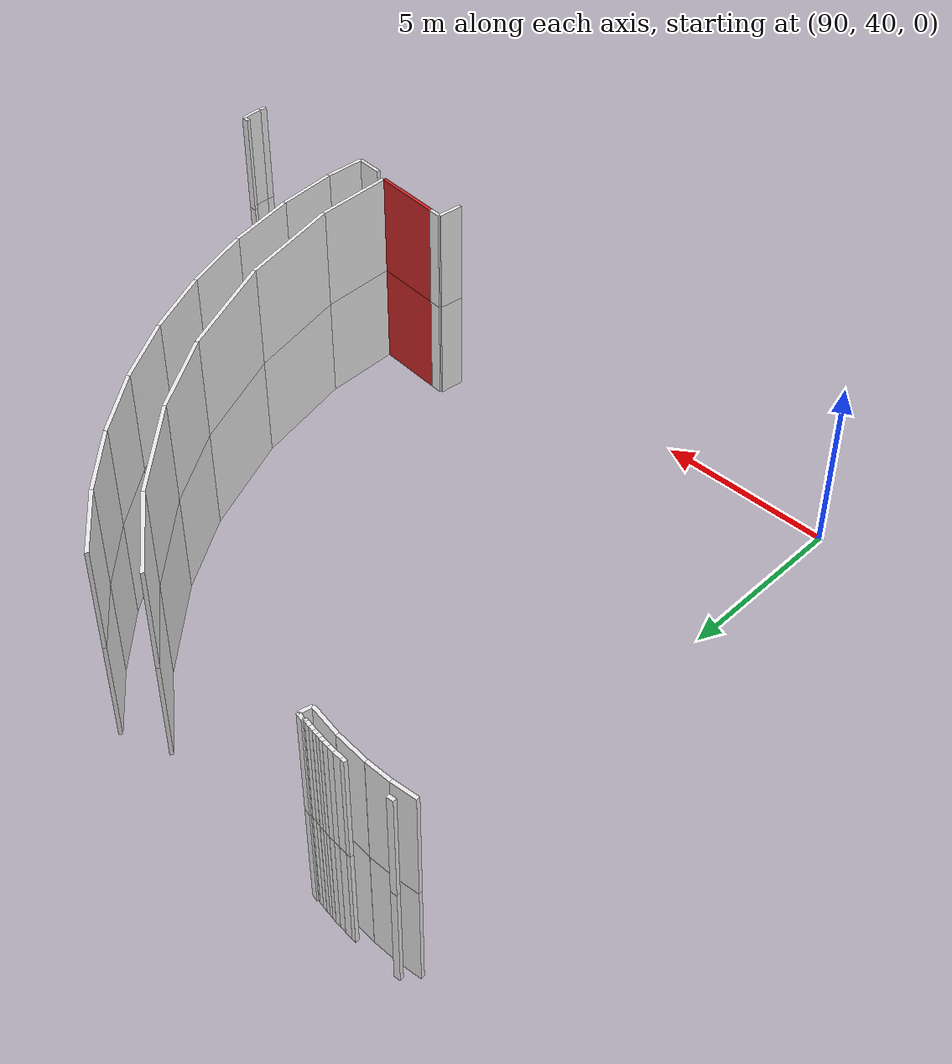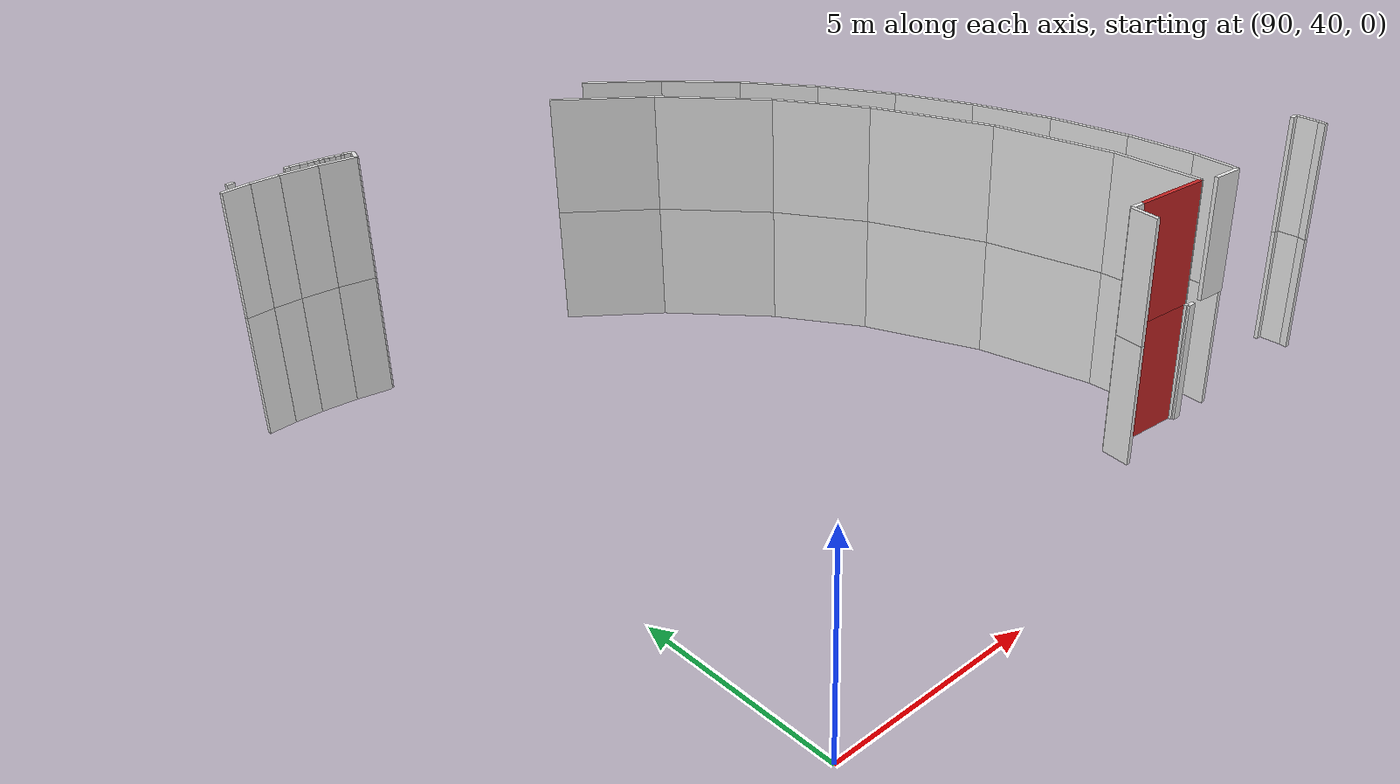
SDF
<sdf version="1.6">
 <world name="default">
  <model name="wall_102.6_42.5_1.5">
   <static>true</static>
   <pose>102.60500000001048 42.48999999999069 1.5 0 0 -0.08271241528552369</pose>
   <link name="link">
    <visual name="visual">
     <geometry><box><size>1.9366207682124321 0.1 3</size></box></geometry>
     <material>
      <script><uri>file://media/materials/scripts/gazebo.material</uri><name>Gazebo/Red</name></script>
     </material>
    </visual>
    <collision name="collision"><geometry><box><size>1.9366207682124321 0.1 3</size></box></geometry></collision>
   </link>
  </model>
  <model name="wall_102.6_42.5_4.5">
   <static>true</static>
   <pose>102.60500000001048 42.48999999999069 4.5 0 0 -0.08271241528552369</pose>
   <link name="link">
    <visual name="visual">
     <geometry><box><size>1.9366207682124321 0.1 3</size></box></geometry>
     <material>
      <script><uri>file://media/materials/scripts/gazebo.material</uri><name>Gazebo/Red</name></script>
     </material>
    </visual>
    <collision name="collision"><geometry><box><size>1.9366207682124321 0.1 3</size></box></geometry></collision>
   </link>
  </model>
  <model name="wall_101.6_42.3_1.5">
   <static>true</static>
   <pose>101.5800000000163 42.29000000003725 1.5 0 0 1.4601391053370611</pose>
   <link name="link">
    <visual name="visual">
     <geometry><box><size>0.18110770246860486 0.1 3</size></box></geometry>
     <material>
      <script><uri>file://media/materials/scripts/gazebo.material</uri><name>Gazebo/White</name></script>
     </material>
    </visual>
    <collision name="collision"><geometry><box><size>0.18110770246860486 0.1 3</size></box></geometry></collision>
   </link>
  </model>
  <model name="wall_101.6_42.4_1.5">
   <static>true</static>
   <pose>101.61000000001513 42.375 1.5 0 0 -0.24497865799089408</pose>
   <link name="link">
    <visual name="visual">
     <geometry><box><size>0.04123105618163657 0.1 3</size></box></geometry>
     <material>
      <script><uri>file://media/materials/scripts/gazebo.material</uri><name>Gazebo/White</name></script>
     </material>
    </visual>
    <collision name="collision"><geometry><box><size>0.04123105618163657 0.1 3</size></box></geometry></collision>
   </link>
  </model>
  <model name="wall_101.6_42.5_1.5">
   <static>true</static>
   <pose>101.63500000000931 42.46999999997206 1.5 0 0 1.520837930956829</pose>
   <link name="link">
    <visual name="visual">
     <geometry><box><size>0.20024984366642476 0.1 3</size></box></geometry>
     <material>
      <script><uri>file://media/materials/scripts/gazebo.material</uri><name>Gazebo/White</name></script>
     </material>
    </visual>
    <collision name="collision"><geometry><box><size>0.20024984366642476 0.1 3</size></box></geometry></collision>
   </link>
  </model>
  <model name="wall_103.6_42.4_1.5">
   <static>true</static>
   <pose>103.56500000000233 42.35000000009313 1.5 0 0 -1.6539375586833378</pose>
   <link name="link">
    <visual name="visual">
     <geometry><box><size>0.12041594590006904 0.1 3</size></box></geometry>
     <material>
      <script><uri>file://media/materials/scripts/gazebo.material</uri><name>Gazebo/White</name></script>
     </material>
    </visual>
    <collision name="collision"><geometry><box><size>0.12041594590006904 0.1 3</size></box></geometry></collision>
   </link>
  </model>
  <model name="wall_103.7_42.3_1.5">
   <static>true</static>
   <pose>103.66500000000815 42.28499999991618 1.5 0 0 -0.0475831044226998</pose>
   <link name="link">
    <visual name="visual">
     <geometry><box><size>0.21023796044873502 0.1 3</size></box></geometry>
     <material>
      <script><uri>file://media/materials/scripts/gazebo.material</uri><name>Gazebo/White</name></script>
     </material>
    </visual>
    <collision name="collision"><geometry><box><size>0.21023796044873502 0.1 3</size></box></geometry></collision>
   </link>
  </model>
  <model name="wall_91.1_56.7_1.5">
   <static>true</static>
   <pose>91.07500000001164 56.68000000016764 1.5 0 0 1.3258176636680326</pose>
   <link name="link">
    <visual name="visual">
     <geometry><box><size>0.04123105629457602 0.1 3</size></box></geometry>
     <material>
      <script><uri>file://media/materials/scripts/gazebo.material</uri><name>Gazebo/White</name></script>
     </material>
    </visual>
    <collision name="collision"><geometry><box><size>0.04123105629457602 0.1 3</size></box></geometry></collision>
   </link>
  </model>
  <model name="wall_91.2_56.7_1.5">
   <static>true</static>
   <pose>91.18000000002212 56.675000000046566 1.5 0 0 -0.24497866442797658</pose>
   <link name="link">
    <visual name="visual">
     <geometry><box><size>0.20615528135994066 0.1 3</size></box></geometry>
     <material>
      <script><uri>file://media/materials/scripts/gazebo.material</uri><name>Gazebo/White</name></script>
     </material>
    </visual>
    <collision name="collision"><geometry><box><size>0.20615528135994066 0.1 3</size></box></geometry></collision>
   </link>
  </model>
  <model name="wall_88.5_56.8_1.5">
   <static>true</static>
   <pose>88.47000000000116 56.83499999996275 1.5 0 0 0.05549850400992342</pose>
   <link name="link">
    <visual name="visual">
     <geometry><box><size>0.18027756375382678 0.1 3</size></box></geometry>
     <material>
      <script><uri>file://media/materials/scripts/gazebo.material</uri><name>Gazebo/White</name></script>
     </material>
    </visual>
    <collision name="collision"><geometry><box><size>0.18027756375382678 0.1 3</size></box></geometry></collision>
   </link>
  </model>
  <model name="wall_89.8_56.8_1.5">
   <static>true</static>
   <pose>89.77999999999884 56.83499999996275 1.5 0 0 -0.08314123000171016</pose>
   <link name="link">
    <visual name="visual">
     <geometry><box><size>0.12041594582272691 0.1 3</size></box></geometry>
     <material>
      <script><uri>file://media/materials/scripts/gazebo.material</uri><name>Gazebo/White</name></script>
     </material>
    </visual>
    <collision name="collision"><geometry><box><size>0.12041594582272691 0.1 3</size></box></geometry></collision>
   </link>
  </model>
  <model name="wall_90.0_56.8_1.5">
   <static>true</static>
   <pose>89.95000000001164 56.82000000006519 1.5 0 0 -0.0906598872961675</pose>
   <link name="link">
    <visual name="visual">
     <geometry><box><size>0.22090722031760665 0.1 3</size></box></geometry>
     <material>
      <script><uri>file://media/materials/scripts/gazebo.material</uri><name>Gazebo/White</name></script>
     </material>
    </visual>
    <collision name="collision"><geometry><box><size>0.22090722031760665 0.1 3</size></box></geometry></collision>
   </link>
  </model>
  <model name="wall_90.1_56.8_1.5">
   <static>true</static>
   <pose>90.14999999999418 56.800000000046566 1.5 0 0 -0.11065722128037307</pose>
   <link name="link">
    <visual name="visual">
     <geometry><box><size>0.1811077027578631 0.1 3</size></box></geometry>
     <material>
      <script><uri>file://media/materials/scripts/gazebo.material</uri><name>Gazebo/White</name></script>
     </material>
    </visual>
    <collision name="collision"><geometry><box><size>0.1811077027578631 0.1 3</size></box></geometry></collision>
   </link>
  </model>
  <model name="wall_90.3_56.8_1.5">
   <static>true</static>
   <pose>90.31500000000233 56.78499999991618 1.5 0 0 -0.06656816537267114</pose>
   <link name="link">
    <visual name="visual">
     <geometry><box><size>0.15033296382306774 0.1 3</size></box></geometry>
     <material>
      <script><uri>file://media/materials/scripts/gazebo.material</uri><name>Gazebo/White</name></script>
     </material>
    </visual>
    <collision name="collision"><geometry><box><size>0.15033296382306774 0.1 3</size></box></geometry></collision>
   </link>
  </model>
  <model name="wall_90.5_56.8_1.5">
   <static>true</static>
   <pose>90.45000000001164 56.769999999785796 1.5 0 0 -0.16514867757194485</pose>
   <link name="link">
    <visual name="visual">
     <geometry><box><size>0.1216552506044333 0.1 3</size></box></geometry>
     <material>
      <script><uri>file://media/materials/scripts/gazebo.material</uri><name>Gazebo/White</name></script>
     </material>
    </visual>
    <collision name="collision"><geometry><box><size>0.1216552506044333 0.1 3</size></box></geometry></collision>
   </link>
  </model>
  <model name="wall_90.6_56.8_1.5">
   <static>true</static>
   <pose>90.56500000000233 56.75 1.5 0 0 -0.17985349588092345</pose>
   <link name="link">
    <visual name="visual">
     <geometry><box><size>0.11180339878127696 0.1 3</size></box></geometry>
     <material>
      <script><uri>file://media/materials/scripts/gazebo.material</uri><name>Gazebo/White</name></script>
     </material>
    </visual>
    <collision name="collision"><geometry><box><size>0.11180339878127696 0.1 3</size></box></geometry></collision>
   </link>
  </model>
  <model name="wall_90.7_56.7_1.5">
   <static>true</static>
   <pose>90.67499999998836 56.735000000102445 1.5 0 0 -0.0906598893954602</pose>
   <link name="link">
    <visual name="visual">
     <geometry><box><size>0.11045361017988281 0.1 3</size></box></geometry>
     <material>
      <script><uri>file://media/materials/scripts/gazebo.material</uri><name>Gazebo/White</name></script>
     </material>
    </visual>
    <collision name="collision"><geometry><box><size>0.11045361017988281 0.1 3</size></box></geometry></collision>
   </link>
  </model>
  <model name="wall_90.8_56.7_1.5">
   <static>true</static>
   <pose>90.79999999998836 56.71500000008382 1.5 0 0 -0.2110933318030475</pose>
   <link name="link">
    <visual name="visual">
     <geometry><box><size>0.14317821060349267 0.1 3</size></box></geometry>
     <material>
      <script><uri>file://media/materials/scripts/gazebo.material</uri><name>Gazebo/White</name></script>
     </material>
    </visual>
    <collision name="collision"><geometry><box><size>0.14317821060349267 0.1 3</size></box></geometry></collision>
   </link>
  </model>
  <model name="wall_90.9_56.7_1.5">
   <static>true</static>
   <pose>90.93499999999767 56.69000000017695 1.5 0 0 -0.15264932852984936</pose>
   <link name="link">
    <visual name="visual">
     <geometry><box><size>0.13152946438709381 0.1 3</size></box></geometry>
     <material>
      <script><uri>file://media/materials/scripts/gazebo.material</uri><name>Gazebo/White</name></script>
     </material>
    </visual>
    <collision name="collision"><geometry><box><size>0.13152946438709381 0.1 3</size></box></geometry></collision>
   </link>
  </model>
  <model name="wall_91.0_56.7_1.5">
   <static>true</static>
   <pose>91.03500000000349 56.670000000158325 1.5 0 0 -0.2782996592247629</pose>
   <link name="link">
    <visual name="visual">
     <geometry><box><size>0.07280109890463843 0.1 3</size></box></geometry>
     <material>
      <script><uri>file://media/materials/scripts/gazebo.material</uri><name>Gazebo/White</name></script>
     </material>
    </visual>
    <collision name="collision"><geometry><box><size>0.07280109890463843 0.1 3</size></box></geometry></collision>
   </link>
  </model>
  <model name="wall_88.4_56.5_1.5">
   <static>true</static>
   <pose>88.43499999999767 56.52000000001863 1.5 0 0 0.0893139923809162</pose>
   <link name="link">
    <visual name="visual">
     <geometry><box><size>0.6726812023588774 0.1 3</size></box></geometry>
     <material>
      <script><uri>file://media/materials/scripts/gazebo.material</uri><name>Gazebo/White</name></script>
     </material>
    </visual>
    <collision name="collision"><geometry><box><size>0.6726812023588774 0.1 3</size></box></geometry></collision>
   </link>
  </model>
  <model name="wall_89.1_56.5_1.5">
   <static>true</static>
   <pose>89.11000000001513 56.549999999813735 1.5 0 0 0.0</pose>
   <link name="link">
    <visual name="visual">
     <geometry><box><size>0.6799999999930151 0.1 3</size></box></geometry>
     <material>
      <script><uri>file://media/materials/scripts/gazebo.material</uri><name>Gazebo/White</name></script>
     </material>
    </visual>
    <collision name="collision"><geometry><box><size>0.6799999999930151 0.1 3</size></box></geometry></collision>
   </link>
  </model>
  <model name="wall_89.9_56.5_1.5">
   <static>true</static>
   <pose>89.89000000001397 56.514999999897555 1.5 0 0 -0.07937831436985521</pose>
   <link name="link">
    <visual name="visual">
     <geometry><box><size>0.8827797007094841 0.1 3</size></box></geometry>
     <material>
      <script><uri>file://media/materials/scripts/gazebo.material</uri><name>Gazebo/White</name></script>
     </material>
    </visual>
    <collision name="collision"><geometry><box><size>0.8827797007094841 0.1 3</size></box></geometry></collision>
   </link>
  </model>
  <model name="wall_90.8_56.4_1.5">
   <static>true</static>
   <pose>90.76500000001397 56.40500000002794 1.5 0 0 -0.17073521137222075</pose>
   <link name="link">
    <visual name="visual">
     <geometry><box><size>0.882836338153317 0.1 3</size></box></geometry>
     <material>
      <script><uri>file://media/materials/scripts/gazebo.material</uri><name>Gazebo/White</name></script>
     </material>
    </visual>
    <collision name="collision"><geometry><box><size>0.882836338153317 0.1 3</size></box></geometry></collision>
   </link>
  </model>
  <model name="wall_91.2_56.5_1.5">
   <static>true</static>
   <pose>91.24000000001979 56.48999999999069 1.5 0 0 1.3258176634968335</pose>
   <link name="link">
    <visual name="visual">
     <geometry><box><size>0.3298484498907329 0.1 3</size></box></geometry>
     <material>
      <script><uri>file://media/materials/scripts/gazebo.material</uri><name>Gazebo/White</name></script>
     </material>
    </visual>
    <collision name="collision"><geometry><box><size>0.3298484498907329 0.1 3</size></box></geometry></collision>
   </link>
  </model>
  <model name="wall_97.5_55.6_1.5">
   <static>true</static>
   <pose>97.49499999999534 55.55499999993481 1.5 0 0 -0.6802320401382534</pose>
   <link name="link">
    <visual name="visual">
     <geometry><box><size>2.559726547806053 0.1 3</size></box></geometry>
     <material>
      <script><uri>file://media/materials/scripts/gazebo.material</uri><name>Gazebo/White</name></script>
     </material>
    </visual>
    <collision name="collision"><geometry><box><size>2.559726547806053 0.1 3</size></box></geometry></collision>
   </link>
  </model>
  <model name="wall_99.5_53.7_1.5">
   <static>true</static>
   <pose>99.46499999999651 53.65500000002794 1.5 0 0 -0.8433043686299182</pose>
   <link name="link">
    <visual name="visual">
     <geometry><box><size>2.932336951954985 0.1 3</size></box></geometry>
     <material>
      <script><uri>file://media/materials/scripts/gazebo.material</uri><name>Gazebo/White</name></script>
     </material>
    </visual>
    <collision name="collision"><geometry><box><size>2.932336951954985 0.1 3</size></box></geometry></collision>
   </link>
  </model>
  <model name="wall_101.1_51.5_1.5">
   <static>true</static>
   <pose>101.09500000000116 51.5250000001397 1.5 0 0 -1.0065718003034507</pose>
   <link name="link">
    <visual name="visual">
     <geometry><box><size>2.449693858281046 0.1 3</size></box></geometry>
     <material>
      <script><uri>file://media/materials/scripts/gazebo.material</uri><name>Gazebo/White</name></script>
     </material>
    </visual>
    <collision name="collision"><geometry><box><size>2.449693858281046 0.1 3</size></box></geometry></collision>
   </link>
  </model>
  <model name="wall_102.3_49.1_1.5">
   <static>true</static>
   <pose>102.34500000000116 49.050000000046566 1.5 0 0 -1.1789674300212807</pose>
   <link name="link">
    <visual name="visual">
     <geometry><box><size>3.1161675182897373 0.1 3</size></box></geometry>
     <material>
      <script><uri>file://media/materials/scripts/gazebo.material</uri><name>Gazebo/White</name></script>
     </material>
    </visual>
    <collision name="collision"><geometry><box><size>3.1161675182897373 0.1 3</size></box></geometry></collision>
   </link>
  </model>
  <model name="wall_103.3_46.1_1.5">
   <static>true</static>
   <pose>103.25500000000466 46.125 1.5 0 0 -1.361773383969309</pose>
   <link name="link">
    <visual name="visual">
     <geometry><box><size>3.036083002563812 0.1 3</size></box></geometry>
     <material>
      <script><uri>file://media/materials/scripts/gazebo.material</uri><name>Gazebo/White</name></script>
     </material>
    </visual>
    <collision name="collision"><geometry><box><size>3.036083002563812 0.1 3</size></box></geometry></collision>
   </link>
  </model>
  <model name="wall_103.6_43.5_1.5">
   <static>true</static>
   <pose>103.58499999999185 43.5250000001397 1.5 0 0 -1.5573442234956494</pose>
   <link name="link">
    <visual name="visual">
     <geometry><box><size>2.230201784573564 0.1 3</size></box></geometry>
     <material>
      <script><uri>file://media/materials/scripts/gazebo.material</uri><name>Gazebo/White</name></script>
     </material>
    </visual>
    <collision name="collision"><geometry><box><size>2.230201784573564 0.1 3</size></box></geometry></collision>
   </link>
  </model>
  <model name="wall_101.5_42.6_1.5">
   <static>true</static>
   <pose>101.47000000000116 42.58499999996275 1.5 0 0 3.053585279307601</pose>
   <link name="link">
    <visual name="visual">
     <geometry><box><size>0.3413209633659526 0.1 3</size></box></geometry>
     <material>
      <script><uri>file://media/materials/scripts/gazebo.material</uri><name>Gazebo/White</name></script>
     </material>
    </visual>
    <collision name="collision"><geometry><box><size>0.3413209633659526 0.1 3</size></box></geometry></collision>
   </link>
  </model>
  <model name="wall_101.3_42.2_1.5">
   <static>true</static>
   <pose>101.25999999998021 42.24500000011176 1.5 0 0 -1.6829991418206562</pose>
   <link name="link">
    <visual name="visual">
     <geometry><box><size>0.7144928270806562 0.1 3</size></box></geometry>
     <material>
      <script><uri>file://media/materials/scripts/gazebo.material</uri><name>Gazebo/White</name></script>
     </material>
    </visual>
    <collision name="collision"><geometry><box><size>0.7144928270806562 0.1 3</size></box></geometry></collision>
   </link>
  </model>
  <model name="wall_108.7_42.7_1.5">
   <static>true</static>
   <pose>108.65499999999884 42.71999999997206 1.5 0 0 1.587461450424783</pose>
   <link name="link">
    <visual name="visual">
     <geometry><box><size>0.6000833276394044 0.1 3</size></box></geometry>
     <material>
      <script><uri>file://media/materials/scripts/gazebo.material</uri><name>Gazebo/White</name></script>
     </material>
    </visual>
    <collision name="collision"><geometry><box><size>0.6000833276394044 0.1 3</size></box></geometry></collision>
   </link>
  </model>
  <model name="wall_108.6_43.0_1.5">
   <static>true</static>
   <pose>108.55000000001746 43.014999999897555 1.5 0 0 -3.0916342566630535</pose>
   <link name="link">
    <visual name="visual">
     <geometry><box><size>0.20024984396872697 0.1 3</size></box></geometry>
     <material>
      <script><uri>file://media/materials/scripts/gazebo.material</uri><name>Gazebo/White</name></script>
     </material>
    </visual>
    <collision name="collision"><geometry><box><size>0.20024984396872697 0.1 3</size></box></geometry></collision>
   </link>
  </model>
  <model name="wall_104.8_42.8_1.5">
   <static>true</static>
   <pose>104.75499999997555 42.77000000001863 1.5 0 0 1.509469815630436</pose>
   <link name="link">
    <visual name="visual">
     <geometry><box><size>1.1421471005245114 0.1 3</size></box></geometry>
     <material>
      <script><uri>file://media/materials/scripts/gazebo.material</uri><name>Gazebo/White</name></script>
     </material>
    </visual>
    <collision name="collision"><geometry><box><size>1.1421471005245114 0.1 3</size></box></geometry></collision>
   </link>
  </model>
  <model name="wall_104.7_44.2_1.5">
   <static>true</static>
   <pose>104.72999999998137 44.18999999994412 1.5 0 0 1.6412676713632708</pose>
   <link name="link">
    <visual name="visual">
     <geometry><box><size>1.7042300316072891 0.1 3</size></box></geometry>
     <material>
      <script><uri>file://media/materials/scripts/gazebo.material</uri><name>Gazebo/White</name></script>
     </material>
    </visual>
    <collision name="collision"><geometry><box><size>1.7042300316072891 0.1 3</size></box></geometry></collision>
   </link>
  </model>
  <model name="wall_104.5_46.0_1.5">
   <static>true</static>
   <pose>104.48999999999069 46.015000000130385 1.5 0 0 1.7533561799018222</pose>
   <link name="link">
    <visual name="visual">
     <geometry><box><size>1.982952344539922 0.1 3</size></box></geometry>
     <material>
      <script><uri>file://media/materials/scripts/gazebo.material</uri><name>Gazebo/White</name></script>
     </material>
    </visual>
    <collision name="collision"><geometry><box><size>1.982952344539922 0.1 3</size></box></geometry></collision>
   </link>
  </model>
  <model name="wall_104.0_47.9_1.5">
   <static>true</static>
   <pose>104.01000000000931 47.94500000006519 1.5 0 0 1.8751710629953546</pose>
   <link name="link">
    <visual name="visual">
     <geometry><box><size>2.002023975571336 0.1 3</size></box></geometry>
     <material>
      <script><uri>file://media/materials/scripts/gazebo.material</uri><name>Gazebo/White</name></script>
     </material>
    </visual>
    <collision name="collision"><geometry><box><size>2.002023975571336 0.1 3</size></box></geometry></collision>
   </link>
  </model>
  <model name="wall_103.3_49.8_1.5">
   <static>true</static>
   <pose>103.30999999999767 49.81499999994412 1.5 0 0 1.9829200711588533</pose>
   <link name="link">
    <visual name="visual">
     <geometry><box><size>1.9972230722548738 0.1 3</size></box></geometry>
     <material>
      <script><uri>file://media/materials/scripts/gazebo.material</uri><name>Gazebo/White</name></script>
     </material>
    </visual>
    <collision name="collision"><geometry><box><size>1.9972230722548738 0.1 3</size></box></geometry></collision>
   </link>
  </model>
  <model name="wall_102.4_51.6_1.5">
   <static>true</static>
   <pose>102.40999999997439 51.59499999997206 1.5 0 0 2.0949082599421773</pose>
   <link name="link">
    <visual name="visual">
     <geometry><box><size>1.9982242116278024 0.1 3</size></box></geometry>
     <material>
      <script><uri>file://media/materials/scripts/gazebo.material</uri><name>Gazebo/White</name></script>
     </material>
    </visual>
    <collision name="collision"><geometry><box><size>1.9982242116278024 0.1 3</size></box></geometry></collision>
   </link>
  </model>
  <model name="wall_101.3_53.3_1.5">
   <static>true</static>
   <pose>101.31499999997322 53.26000000000931 1.5 0 0 2.210285420979203</pose>
   <link name="link">
    <visual name="visual">
     <geometry><box><size>1.9940160481559732 0.1 3</size></box></geometry>
     <material>
      <script><uri>file://media/materials/scripts/gazebo.material</uri><name>Gazebo/White</name></script>
     </material>
    </visual>
    <collision name="collision"><geometry><box><size>1.9940160481559732 0.1 3</size></box></geometry></collision>
   </link>
  </model>
  <model name="wall_100.0_54.8_1.5">
   <static>true</static>
   <pose>100.03499999997439 54.79000000003725 1.5 0 0 2.3244030848489046</pose>
   <link name="link">
    <visual name="visual">
     <geometry><box><size>2.00212387226127 0.1 3</size></box></geometry>
     <material>
      <script><uri>file://media/materials/scripts/gazebo.material</uri><name>Gazebo/White</name></script>
     </material>
    </visual>
    <collision name="collision"><geometry><box><size>2.00212387226127 0.1 3</size></box></geometry></collision>
   </link>
  </model>
  <model name="wall_98.6_56.2_1.5">
   <static>true</static>
   <pose>98.58999999999651 56.16500000003725 1.5 0 0 2.4378629690684206</pose>
   <link name="link">
    <visual name="visual">
     <geometry><box><size>1.9936148073225644 0.1 3</size></box></geometry>
     <material>
      <script><uri>file://media/materials/scripts/gazebo.material</uri><name>Gazebo/White</name></script>
     </material>
    </visual>
    <collision name="collision"><geometry><box><size>1.9936148073225644 0.1 3</size></box></geometry></collision>
   </link>
  </model>
  <model name="wall_108.6_42.3_1.5">
   <static>true</static>
   <pose>108.64499999998952 42.32000000006519 1.5 0 0 1.4219063791284725</pose>
   <link name="link">
    <visual name="visual">
     <geometry><box><size>0.20223748388077126 0.1 3</size></box></geometry>
     <material>
      <script><uri>file://media/materials/scripts/gazebo.material</uri><name>Gazebo/White</name></script>
     </material>
    </visual>
    <collision name="collision"><geometry><box><size>0.20223748388077126 0.1 3</size></box></geometry></collision>
   </link>
  </model>
  <model name="wall_91.1_56.7_4.5">
   <static>true</static>
   <pose>91.07500000001164 56.68000000016764 4.5 0 0 1.3258176636680326</pose>
   <link name="link">
    <visual name="visual">
     <geometry><box><size>0.04123105629457602 0.1 3</size></box></geometry>
     <material>
      <script><uri>file://media/materials/scripts/gazebo.material</uri><name>Gazebo/White</name></script>
     </material>
    </visual>
    <collision name="collision"><geometry><box><size>0.04123105629457602 0.1 3</size></box></geometry></collision>
   </link>
  </model>
  <model name="wall_91.2_56.7_4.5">
   <static>true</static>
   <pose>91.18000000002212 56.675000000046566 4.5 0 0 -0.24497866442797658</pose>
   <link name="link">
    <visual name="visual">
     <geometry><box><size>0.20615528135994066 0.1 3</size></box></geometry>
     <material>
      <script><uri>file://media/materials/scripts/gazebo.material</uri><name>Gazebo/White</name></script>
     </material>
    </visual>
    <collision name="collision"><geometry><box><size>0.20615528135994066 0.1 3</size></box></geometry></collision>
   </link>
  </model>
  <model name="wall_88.5_56.8_4.5">
   <static>true</static>
   <pose>88.47000000000116 56.83499999996275 4.5 0 0 0.05549850400992342</pose>
   <link name="link">
    <visual name="visual">
     <geometry><box><size>0.18027756375382678 0.1 3</size></box></geometry>
     <material>
      <script><uri>file://media/materials/scripts/gazebo.material</uri><name>Gazebo/White</name></script>
     </material>
    </visual>
    <collision name="collision"><geometry><box><size>0.18027756375382678 0.1 3</size></box></geometry></collision>
   </link>
  </model>
  <model name="wall_89.8_56.8_4.5">
   <static>true</static>
   <pose>89.77999999999884 56.83499999996275 4.5 0 0 -0.08314123000171016</pose>
   <link name="link">
    <visual name="visual">
     <geometry><box><size>0.12041594582272691 0.1 3</size></box></geometry>
     <material>
      <script><uri>file://media/materials/scripts/gazebo.material</uri><name>Gazebo/White</name></script>
     </material>
    </visual>
    <collision name="collision"><geometry><box><size>0.12041594582272691 0.1 3</size></box></geometry></collision>
   </link>
  </model>
  <model name="wall_90.0_56.8_4.5">
   <static>true</static>
   <pose>89.95000000001164 56.82000000006519 4.5 0 0 -0.0906598872961675</pose>
   <link name="link">
    <visual name="visual">
     <geometry><box><size>0.22090722031760665 0.1 3</size></box></geometry>
     <material>
      <script><uri>file://media/materials/scripts/gazebo.material</uri><name>Gazebo/White</name></script>
     </material>
    </visual>
    <collision name="collision"><geometry><box><size>0.22090722031760665 0.1 3</size></box></geometry></collision>
   </link>
  </model>
  <model name="wall_90.1_56.8_4.5">
   <static>true</static>
   <pose>90.14999999999418 56.800000000046566 4.5 0 0 -0.11065722128037307</pose>
   <link name="link">
    <visual name="visual">
     <geometry><box><size>0.1811077027578631 0.1 3</size></box></geometry>
     <material>
      <script><uri>file://media/materials/scripts/gazebo.material</uri><name>Gazebo/White</name></script>
     </material>
    </visual>
    <collision name="collision"><geometry><box><size>0.1811077027578631 0.1 3</size></box></geometry></collision>
   </link>
  </model>
  <model name="wall_90.3_56.8_4.5">
   <static>true</static>
   <pose>90.31500000000233 56.78499999991618 4.5 0 0 -0.06656816537267114</pose>
   <link name="link">
    <visual name="visual">
     <geometry><box><size>0.15033296382306774 0.1 3</size></box></geometry>
     <material>
      <script><uri>file://media/materials/scripts/gazebo.material</uri><name>Gazebo/White</name></script>
     </material>
    </visual>
    <collision name="collision"><geometry><box><size>0.15033296382306774 0.1 3</size></box></geometry></collision>
   </link>
  </model>
  <model name="wall_90.5_56.8_4.5">
   <static>true</static>
   <pose>90.45000000001164 56.769999999785796 4.5 0 0 -0.16514867757194485</pose>
   <link name="link">
    <visual name="visual">
     <geometry><box><size>0.1216552506044333 0.1 3</size></box></geometry>
     <material>
      <script><uri>file://media/materials/scripts/gazebo.material</uri><name>Gazebo/White</name></script>
     </material>
    </visual>
    <collision name="collision"><geometry><box><size>0.1216552506044333 0.1 3</size></box></geometry></collision>
   </link>
  </model>
  <model name="wall_90.6_56.8_4.5">
   <static>true</static>
   <pose>90.56500000000233 56.75 4.5 0 0 -0.17985349588092345</pose>
   <link name="link">
    <visual name="visual">
     <geometry><box><size>0.11180339878127696 0.1 3</size></box></geometry>
     <material>
      <script><uri>file://media/materials/scripts/gazebo.material</uri><name>Gazebo/White</name></script>
     </material>
    </visual>
    <collision name="collision"><geometry><box><size>0.11180339878127696 0.1 3</size></box></geometry></collision>
   </link>
  </model>
  <model name="wall_90.7_56.7_4.5">
   <static>true</static>
   <pose>90.67499999998836 56.735000000102445 4.5 0 0 -0.0906598893954602</pose>
   <link name="link">
    <visual name="visual">
     <geometry><box><size>0.11045361017988281 0.1 3</size></box></geometry>
     <material>
      <script><uri>file://media/materials/scripts/gazebo.material</uri><name>Gazebo/White</name></script>
     </material>
    </visual>
    <collision name="collision"><geometry><box><size>0.11045361017988281 0.1 3</size></box></geometry></collision>
   </link>
  </model>
  <model name="wall_90.8_56.7_4.5">
   <static>true</static>
   <pose>90.79999999998836 56.71500000008382 4.5 0 0 -0.2110933318030475</pose>
   <link name="link">
    <visual name="visual">
     <geometry><box><size>0.14317821060349267 0.1 3</size></box></geometry>
     <material>
      <script><uri>file://media/materials/scripts/gazebo.material</uri><name>Gazebo/White</name></script>
     </material>
    </visual>
    <collision name="collision"><geometry><box><size>0.14317821060349267 0.1 3</size></box></geometry></collision>
   </link>
  </model>
  <model name="wall_90.9_56.7_4.5">
   <static>true</static>
   <pose>90.93499999999767 56.69000000017695 4.5 0 0 -0.15264932852984936</pose>
   <link name="link">
    <visual name="visual">
     <geometry><box><size>0.13152946438709381 0.1 3</size></box></geometry>
     <material>
      <script><uri>file://media/materials/scripts/gazebo.material</uri><name>Gazebo/White</name></script>
     </material>
    </visual>
    <collision name="collision"><geometry><box><size>0.13152946438709381 0.1 3</size></box></geometry></collision>
   </link>
  </model>
  <model name="wall_91.0_56.7_4.5">
   <static>true</static>
   <pose>91.03500000000349 56.670000000158325 4.5 0 0 -0.2782996592247629</pose>
   <link name="link">
    <visual name="visual">
     <geometry><box><size>0.07280109890463843 0.1 3</size></box></geometry>
     <material>
      <script><uri>file://media/materials/scripts/gazebo.material</uri><name>Gazebo/White</name></script>
     </material>
    </visual>
    <collision name="collision"><geometry><box><size>0.07280109890463843 0.1 3</size></box></geometry></collision>
   </link>
  </model>
  <model name="wall_88.4_56.5_4.5">
   <static>true</static>
   <pose>88.43499999999767 56.52000000001863 4.5 0 0 0.0893139923809162</pose>
   <link name="link">
    <visual name="visual">
     <geometry><box><size>0.6726812023588774 0.1 3</size></box></geometry>
     <material>
      <script><uri>file://media/materials/scripts/gazebo.material</uri><name>Gazebo/White</name></script>
     </material>
    </visual>
    <collision name="collision"><geometry><box><size>0.6726812023588774 0.1 3</size></box></geometry></collision>
   </link>
  </model>
  <model name="wall_89.1_56.5_4.5">
   <static>true</static>
   <pose>89.11000000001513 56.549999999813735 4.5 0 0 0.0</pose>
   <link name="link">
    <visual name="visual">
     <geometry><box><size>0.6799999999930151 0.1 3</size></box></geometry>
     <material>
      <script><uri>file://media/materials/scripts/gazebo.material</uri><name>Gazebo/White</name></script>
     </material>
    </visual>
    <collision name="collision"><geometry><box><size>0.6799999999930151 0.1 3</size></box></geometry></collision>
   </link>
  </model>
  <model name="wall_89.9_56.5_4.5">
   <static>true</static>
   <pose>89.89000000001397 56.514999999897555 4.5 0 0 -0.07937831436985521</pose>
   <link name="link">
    <visual name="visual">
     <geometry><box><size>0.8827797007094841 0.1 3</size></box></geometry>
     <material>
      <script><uri>file://media/materials/scripts/gazebo.material</uri><name>Gazebo/White</name></script>
     </material>
    </visual>
    <collision name="collision"><geometry><box><size>0.8827797007094841 0.1 3</size></box></geometry></collision>
   </link>
  </model>
  <model name="wall_90.8_56.4_4.5">
   <static>true</static>
   <pose>90.76500000001397 56.40500000002794 4.5 0 0 -0.17073521137222075</pose>
   <link name="link">
    <visual name="visual">
     <geometry><box><size>0.882836338153317 0.1 3</size></box></geometry>
     <material>
      <script><uri>file://media/materials/scripts/gazebo.material</uri><name>Gazebo/White</name></script>
     </material>
    </visual>
    <collision name="collision"><geometry><box><size>0.882836338153317 0.1 3</size></box></geometry></collision>
   </link>
  </model>
  <model name="wall_91.2_56.5_4.5">
   <static>true</static>
   <pose>91.24000000001979 56.48999999999069 4.5 0 0 1.3258176634968335</pose>
   <link name="link">
    <visual name="visual">
     <geometry><box><size>0.3298484498907329 0.1 3</size></box></geometry>
     <material>
      <script><uri>file://media/materials/scripts/gazebo.material</uri><name>Gazebo/White</name></script>
     </material>
    </visual>
    <collision name="collision"><geometry><box><size>0.3298484498907329 0.1 3</size></box></geometry></collision>
   </link>
  </model>
  <model name="wall_97.5_55.6_4.5">
   <static>true</static>
   <pose>97.49499999999534 55.55499999993481 4.5 0 0 -0.6802320401382534</pose>
   <link name="link">
    <visual name="visual">
     <geometry><box><size>2.559726547806053 0.1 3</size></box></geometry>
     <material>
      <script><uri>file://media/materials/scripts/gazebo.material</uri><name>Gazebo/White</name></script>
     </material>
    </visual>
    <collision name="collision"><geometry><box><size>2.559726547806053 0.1 3</size></box></geometry></collision>
   </link>
  </model>
  <model name="wall_99.5_53.7_4.5">
   <static>true</static>
   <pose>99.46499999999651 53.65500000002794 4.5 0 0 -0.8433043686299182</pose>
   <link name="link">
    <visual name="visual">
     <geometry><box><size>2.932336951954985 0.1 3</size></box></geometry>
     <material>
      <script><uri>file://media/materials/scripts/gazebo.material</uri><name>Gazebo/White</name></script>
     </material>
    </visual>
    <collision name="collision"><geometry><box><size>2.932336951954985 0.1 3</size></box></geometry></collision>
   </link>
  </model>
  <model name="wall_101.1_51.5_4.5">
   <static>true</static>
   <pose>101.09500000000116 51.5250000001397 4.5 0 0 -1.0065718003034507</pose>
   <link name="link">
    <visual name="visual">
     <geometry><box><size>2.449693858281046 0.1 3</size></box></geometry>
     <material>
      <script><uri>file://media/materials/scripts/gazebo.material</uri><name>Gazebo/White</name></script>
     </material>
    </visual>
    <collision name="collision"><geometry><box><size>2.449693858281046 0.1 3</size></box></geometry></collision>
   </link>
  </model>
  <model name="wall_102.3_49.1_4.5">
   <static>true</static>
   <pose>102.34500000000116 49.050000000046566 4.5 0 0 -1.1789674300212807</pose>
   <link name="link">
    <visual name="visual">
     <geometry><box><size>3.1161675182897373 0.1 3</size></box></geometry>
     <material>
      <script><uri>file://media/materials/scripts/gazebo.material</uri><name>Gazebo/White</name></script>
     </material>
    </visual>
    <collision name="collision"><geometry><box><size>3.1161675182897373 0.1 3</size></box></geometry></collision>
   </link>
  </model>
  <model name="wall_103.3_46.1_4.5">
   <static>true</static>
   <pose>103.25500000000466 46.125 4.5 0 0 -1.361773383969309</pose>
   <link name="link">
    <visual name="visual">
     <geometry><box><size>3.036083002563812 0.1 3</size></box></geometry>
     <material>
      <script><uri>file://media/materials/scripts/gazebo.material</uri><name>Gazebo/White</name></script>
     </material>
    </visual>
    <collision name="collision"><geometry><box><size>3.036083002563812 0.1 3</size></box></geometry></collision>
   </link>
  </model>
  <model name="wall_103.6_43.5_4.5">
   <static>true</static>
   <pose>103.58499999999185 43.5250000001397 4.5 0 0 -1.5573442234956494</pose>
   <link name="link">
    <visual name="visual">
     <geometry><box><size>2.230201784573564 0.1 3</size></box></geometry>
     <material>
      <script><uri>file://media/materials/scripts/gazebo.material</uri><name>Gazebo/White</name></script>
     </material>
    </visual>
    <collision name="collision"><geometry><box><size>2.230201784573564 0.1 3</size></box></geometry></collision>
   </link>
  </model>
  <model name="wall_103.6_42.4_4.5">
   <static>true</static>
   <pose>103.58499999999185 42.41000000014901 4.5 0 0 3.141592653589793</pose>
   <link name="link">
    <visual name="visual">
     <geometry><box><size>0.029999999969732016 0.1 3</size></box></geometry>
     <material>
      <script><uri>file://media/materials/scripts/gazebo.material</uri><name>Gazebo/White</name></script>
     </material>
    </visual>
    <collision name="collision">
     <geometry><box><size>0.029999999969732016 0.1 3</size></box></geometry>
    </collision>
   </link>
  </model>
  <model name="wall_101.5_42.6_4.5">
   <static>true</static>
   <pose>101.47000000000116 42.58499999996275 4.5 0 0 3.053585279307601</pose>
   <link name="link">
    <visual name="visual">
     <geometry><box><size>0.3413209633659526 0.1 3</size></box></geometry>
     <material>
      <script><uri>file://media/materials/scripts/gazebo.material</uri><name>Gazebo/White</name></script>
     </material>
    </visual>
    <collision name="collision"><geometry><box><size>0.3413209633659526 0.1 3</size></box></geometry></collision>
   </link>
  </model>
  <model name="wall_101.3_42.2_4.5">
   <static>true</static>
   <pose>101.25999999998021 42.24500000011176 4.5 0 0 -1.6829991418206562</pose>
   <link name="link">
    <visual name="visual">
     <geometry><box><size>0.7144928270806562 0.1 3</size></box></geometry>
     <material>
      <script><uri>file://media/materials/scripts/gazebo.material</uri><name>Gazebo/White</name></script>
     </material>
    </visual>
    <collision name="collision"><geometry><box><size>0.7144928270806562 0.1 3</size></box></geometry></collision>
   </link>
  </model>
  <model name="wall_108.7_42.7_4.5">
   <static>true</static>
   <pose>108.65499999999884 42.71999999997206 4.5 0 0 1.587461450424783</pose>
   <link name="link">
    <visual name="visual">
     <geometry><box><size>0.6000833276394044 0.1 3</size></box></geometry>
     <material>
      <script><uri>file://media/materials/scripts/gazebo.material</uri><name>Gazebo/White</name></script>
     </material>
    </visual>
    <collision name="collision"><geometry><box><size>0.6000833276394044 0.1 3</size></box></geometry></collision>
   </link>
  </model>
  <model name="wall_108.6_43.0_4.5">
   <static>true</static>
   <pose>108.55000000001746 43.014999999897555 4.5 0 0 -3.0916342566630535</pose>
   <link name="link">
    <visual name="visual">
     <geometry><box><size>0.20024984396872697 0.1 3</size></box></geometry>
     <material>
      <script><uri>file://media/materials/scripts/gazebo.material</uri><name>Gazebo/White</name></script>
     </material>
    </visual>
    <collision name="collision"><geometry><box><size>0.20024984396872697 0.1 3</size></box></geometry></collision>
   </link>
  </model>
  <model name="wall_104.3_42.2_4.5">
   <static>true</static>
   <pose>104.33999999999651 42.22999999998137 4.5 0 0 -0.07878396045834442</pose>
   <link name="link">
    <visual name="visual">
     <geometry><box><size>0.762364742020843 0.1 3</size></box></geometry>
     <material>
      <script><uri>file://media/materials/scripts/gazebo.material</uri><name>Gazebo/White</name></script>
     </material>
    </visual>
    <collision name="collision"><geometry><box><size>0.762364742020843 0.1 3</size></box></geometry></collision>
   </link>
  </model>
  <model name="wall_104.8_42.8_4.5">
   <static>true</static>
   <pose>104.75499999997555 42.77000000001863 4.5 0 0 1.509469815630436</pose>
   <link name="link">
    <visual name="visual">
     <geometry><box><size>1.1421471005245114 0.1 3</size></box></geometry>
     <material>
      <script><uri>file://media/materials/scripts/gazebo.material</uri><name>Gazebo/White</name></script>
     </material>
    </visual>
    <collision name="collision"><geometry><box><size>1.1421471005245114 0.1 3</size></box></geometry></collision>
   </link>
  </model>
  <model name="wall_104.7_44.2_4.5">
   <static>true</static>
   <pose>104.72999999998137 44.18999999994412 4.5 0 0 1.6412676713632708</pose>
   <link name="link">
    <visual name="visual">
     <geometry><box><size>1.7042300316072891 0.1 3</size></box></geometry>
     <material>
      <script><uri>file://media/materials/scripts/gazebo.material</uri><name>Gazebo/White</name></script>
     </material>
    </visual>
    <collision name="collision"><geometry><box><size>1.7042300316072891 0.1 3</size></box></geometry></collision>
   </link>
  </model>
  <model name="wall_104.5_46.0_4.5">
   <static>true</static>
   <pose>104.48999999999069 46.015000000130385 4.5 0 0 1.7533561799018222</pose>
   <link name="link">
    <visual name="visual">
     <geometry><box><size>1.982952344539922 0.1 3</size></box></geometry>
     <material>
      <script><uri>file://media/materials/scripts/gazebo.material</uri><name>Gazebo/White</name></script>
     </material>
    </visual>
    <collision name="collision"><geometry><box><size>1.982952344539922 0.1 3</size></box></geometry></collision>
   </link>
  </model>
  <model name="wall_104.0_47.9_4.5">
   <static>true</static>
   <pose>104.01000000000931 47.94500000006519 4.5 0 0 1.8751710629953546</pose>
   <link name="link">
    <visual name="visual">
     <geometry><box><size>2.002023975571336 0.1 3</size></box></geometry>
     <material>
      <script><uri>file://media/materials/scripts/gazebo.material</uri><name>Gazebo/White</name></script>
     </material>
    </visual>
    <collision name="collision"><geometry><box><size>2.002023975571336 0.1 3</size></box></geometry></collision>
   </link>
  </model>
  <model name="wall_103.3_49.8_4.5">
   <static>true</static>
   <pose>103.30999999999767 49.81499999994412 4.5 0 0 1.9829200711588533</pose>
   <link name="link">
    <visual name="visual">
     <geometry><box><size>1.9972230722548738 0.1 3</size></box></geometry>
     <material>
      <script><uri>file://media/materials/scripts/gazebo.material</uri><name>Gazebo/White</name></script>
     </material>
    </visual>
    <collision name="collision"><geometry><box><size>1.9972230722548738 0.1 3</size></box></geometry></collision>
   </link>
  </model>
  <model name="wall_102.4_51.6_4.5">
   <static>true</static>
   <pose>102.40999999997439 51.59499999997206 4.5 0 0 2.0949082599421773</pose>
   <link name="link">
    <visual name="visual">
     <geometry><box><size>1.9982242116278024 0.1 3</size></box></geometry>
     <material>
      <script><uri>file://media/materials/scripts/gazebo.material</uri><name>Gazebo/White</name></script>
     </material>
    </visual>
    <collision name="collision"><geometry><box><size>1.9982242116278024 0.1 3</size></box></geometry></collision>
   </link>
  </model>
  <model name="wall_101.3_53.3_4.5">
   <static>true</static>
   <pose>101.31499999997322 53.26000000000931 4.5 0 0 2.210285420979203</pose>
   <link name="link">
    <visual name="visual">
     <geometry><box><size>1.9940160481559732 0.1 3</size></box></geometry>
     <material>
      <script><uri>file://media/materials/scripts/gazebo.material</uri><name>Gazebo/White</name></script>
     </material>
    </visual>
    <collision name="collision"><geometry><box><size>1.9940160481559732 0.1 3</size></box></geometry></collision>
   </link>
  </model>
  <model name="wall_100.0_54.8_4.5">
   <static>true</static>
   <pose>100.03499999997439 54.79000000003725 4.5 0 0 2.3244030848489046</pose>
   <link name="link">
    <visual name="visual">
     <geometry><box><size>2.00212387226127 0.1 3</size></box></geometry>
     <material>
      <script><uri>file://media/materials/scripts/gazebo.material</uri><name>Gazebo/White</name></script>
     </material>
    </visual>
    <collision name="collision"><geometry><box><size>2.00212387226127 0.1 3</size></box></geometry></collision>
   </link>
  </model>
  <model name="wall_98.6_56.2_4.5">
   <static>true</static>
   <pose>98.58999999999651 56.16500000003725 4.5 0 0 2.4378629690684206</pose>
   <link name="link">
    <visual name="visual">
     <geometry><box><size>1.9936148073225644 0.1 3</size></box></geometry>
     <material>
      <script><uri>file://media/materials/scripts/gazebo.material</uri><name>Gazebo/White</name></script>
     </material>
    </visual>
    <collision name="collision"><geometry><box><size>1.9936148073225644 0.1 3</size></box></geometry></collision>
   </link>
  </model>
  <model name="wall_108.6_42.3_4.5">
   <static>true</static>
   <pose>108.64499999998952 42.32000000006519 4.5 0 0 1.4219063791284725</pose>
   <link name="link">
    <visual name="visual">
     <geometry><box><size>0.20223748388077126 0.1 3</size></box></geometry>
     <material>
      <script><uri>file://media/materials/scripts/gazebo.material</uri><name>Gazebo/White</name></script>
     </material>
    </visual>
    <collision name="collision"><geometry><box><size>0.20223748388077126 0.1 3</size></box></geometry></collision>
   </link>
  </model>
 </world>
</sdf>
